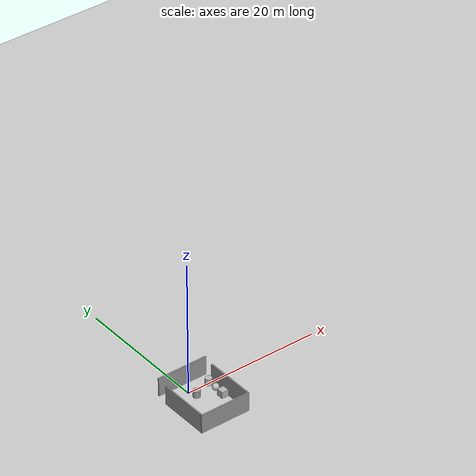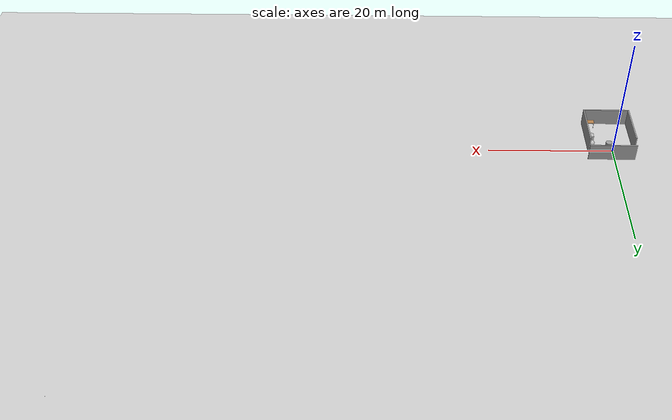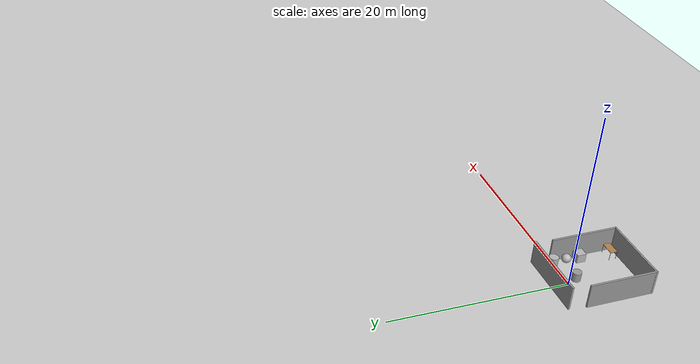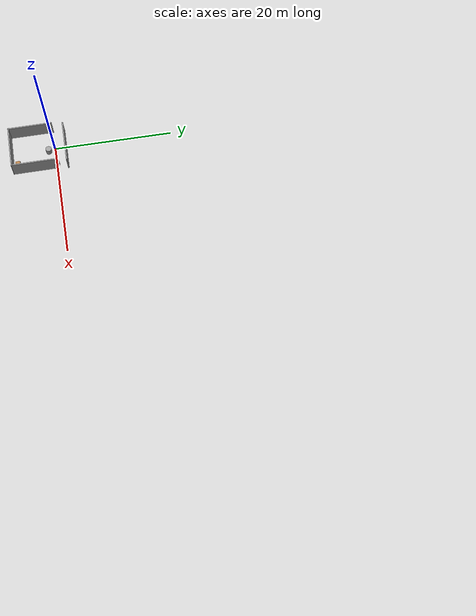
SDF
<sdf version="1.6">
 <world name="default">
  <light name="sun" type="directional">
   <pose>0 0 10 0 -0 0</pose>
   <diffuse>0.8 0.8 0.8 1</diffuse>
   <specular>0.2 0.2 0.2 1</specular>
   <attenuation>
    <range>1000</range>
    <constant>0.9</constant>
    <linear>0.01</linear>
    <quadratic>0.001</quadratic>
   </attenuation>
   <direction>-0.5 0.1 -0.9</direction>
  </light>
  <model name="ground_plane">
   <static>1</static>
   <link name="link">
    <collision name="collision">
     <geometry><plane><normal>0 0 1</normal><size>100 100</size></plane></geometry>
     <surface><friction><ode><mu>100</mu><mu2>50</mu2></ode></friction></surface>
    </collision>
    <visual name="visual">
     <cast_shadows>0</cast_shadows>
     <geometry><plane><normal>0 0 1</normal><size>100 100</size></plane></geometry>
     <material>
      <script><uri>file://media/materials/scripts/gazebo.material</uri><name>Gazebo/Grey</name></script>
     </material>
    </visual>
   </link>
  </model>
  <gravity>0 0 -9.8</gravity>
  <magnetic_field>6e-06 2.3e-05 -4.2e-05</magnetic_field>
  <atmosphere type="adiabatic"/>
  <physics name="default_physics" default="0" type="ode">
   <max_step_size>0.001</max_step_size>
   <real_time_factor>1</real_time_factor>
   <real_time_update_rate>1000</real_time_update_rate>
  </physics>
  <scene><ambient>0.4 0.4 0.4 1</ambient><background>0.7 0.7 0.7 1</background><shadows>1</shadows></scene>
  <spherical_coordinates>
   <surface_model>EARTH_WGS84</surface_model>
   <latitude_deg>0</latitude_deg>
   <longitude_deg>0</longitude_deg>
   <elevation>0</elevation>
   <heading_deg>0</heading_deg>
  </spherical_coordinates>
  <model name="grey_wall">
   <static>1</static>
   <link name="link">
    <pose>0 0 1.4 0 -0 0</pose>
    <collision name="collision"><geometry><box><size>7.5 0.2 2.8</size></box></geometry></collision>
    <visual name="visual">
     <cast_shadows>0</cast_shadows>
     <geometry><box><size>7.5 0.2 2.8</size></box></geometry>
     <material>
      <script>
       <uri>model://grey_wall/materials/scripts</uri>
       <uri>model://grey_wall/materials/textures</uri>
       <name>vrc/grey_wall</name>
      </script>
     </material>
    </visual>
   </link>
   <pose>0.213236 -7.35771 0 0 -0 0</pose>
  </model>
  <model name="grey_wall_1_clone">
   <static>1</static>
   <link name="link">
    <pose>0 0 1.4 0 -0 0</pose>
    <collision name="collision"><geometry><box><size>7.5 0.2 2.8</size></box></geometry></collision>
    <visual name="visual">
     <cast_shadows>0</cast_shadows>
     <geometry><box><size>7.5 0.2 2.8</size></box></geometry>
     <material>
      <script>
       <uri>model://grey_wall/materials/scripts</uri>
       <uri>model://grey_wall/materials/textures</uri>
       <name>vrc/grey_wall</name>
      </script>
     </material>
    </visual>
   </link>
   <pose>3.86033 -3.64104 0 0 0 -1.56625</pose>
  </model>
  <model name="grey_wall_0_clone">
   <static>1</static>
   <link name="link">
    <pose>0 0 1.4 0 -0 0</pose>
    <collision name="collision"><geometry><box><size>7.5 0.2 2.8</size></box></geometry></collision>
    <visual name="visual">
     <cast_shadows>0</cast_shadows>
     <geometry><box><size>7.5 0.2 2.8</size></box></geometry>
     <material>
      <script>
       <uri>model://grey_wall/materials/scripts</uri>
       <uri>model://grey_wall/materials/textures</uri>
       <name>vrc/grey_wall</name>
      </script>
     </material>
    </visual>
   </link>
   <pose>0.455183 1.90264 0 0 -0 0</pose>
  </model>
  <model name="grey_wall_1_clone_clone">
   <static>1</static>
   <link name="link">
    <pose>0 0 1.4 0 -0 0</pose>
    <collision name="collision"><geometry><box><size>7.5 0.2 2.8</size></box></geometry></collision>
    <visual name="visual">
     <cast_shadows>0</cast_shadows>
     <geometry><box><size>7.5 0.2 2.8</size></box></geometry>
     <material>
      <script>
       <uri>model://grey_wall/materials/scripts</uri>
       <uri>model://grey_wall/materials/textures</uri>
       <name>vrc/grey_wall</name>
      </script>
     </material>
    </visual>
   </link>
   <pose>-3.44556 -3.68812 0 0 0 -1.56625</pose>
  </model>
  <model name="metal_peg">
   <link name="link">
    <pose>0 0 0.031 0 -0 0</pose>
    <inertial>
     <mass>0.0121</mass>
     <inertia>
      <ixx>3.90898e-06</ixx>
      <ixy>0</ixy>
      <ixz>0</ixz>
      <iyy>3.90898e-06</iyy>
      <iyz>0</iyz>
      <izz>6.58845e-08</izz>
     </inertia>
    </inertial>
    <collision name="collision">
     <geometry><cylinder><radius>0.0033</radius><length>0.062</length></cylinder></geometry>
     <surface>
      <contact>
       <poissons_ratio>0.305</poissons_ratio>
       <elastic_modulus>2e+11</elastic_modulus>
       <ode><kp>100000</kp><kd>100</kd><max_vel>100</max_vel><min_depth>0.001</min_depth></ode>
      </contact>
      <friction>
       <torsional>
        <coefficient>1</coefficient>
        <use_patch_radius>0</use_patch_radius>
        <surface_radius>0.01</surface_radius>
       </torsional>
      </friction>
     </surface>
    </collision>
    <visual name="visual">
     <geometry><cylinder><radius>0.0033</radius><length>0.062</length></cylinder></geometry>
     <material>
      <script><uri>file://media/materials/scripts/gazebo.material</uri><name>Gazebo/Grey</name></script>
     </material>
    </visual>
   </link>
   <pose>78.2853 49.0052 -0.001 -5e-06 5e-06 -1e-06</pose>
  </model>
  <model name="table_0">
   <static>1</static>
   <link name="link">
    <collision name="surface">
     <pose>0 0 1 0 -0 0</pose>
     <geometry><box><size>1.5 0.8 0.03</size></box></geometry>
     <surface><friction><ode><mu>0.6</mu><mu2>0.6</mu2></ode></friction></surface>
    </collision>
    <visual name="visual1">
     <pose>0 0 1 0 -0 0</pose>
     <geometry><box><size>1.5 0.8 0.03</size></box></geometry>
     <material>
      <script><uri>file://media/materials/scripts/gazebo.material</uri><name>Gazebo/Wood</name></script>
     </material>
    </visual>
    <collision name="front_left_leg">
     <pose>0.68 0.38 0.5 0 -0 0</pose>
     <geometry><cylinder><radius>0.02</radius><length>1</length></cylinder></geometry>
    </collision>
    <visual name="front_left_leg">
     <pose>0.68 0.38 0.5 0 -0 0</pose>
     <geometry><cylinder><radius>0.02</radius><length>1</length></cylinder></geometry>
     <material>
      <script><uri>file://media/materials/scripts/gazebo.material</uri><name>Gazebo/Grey</name></script>
     </material>
    </visual>
    <collision name="front_right_leg">
     <pose>0.68 -0.38 0.5 0 -0 0</pose>
     <geometry><cylinder><radius>0.02</radius><length>1</length></cylinder></geometry>
    </collision>
    <visual name="front_right_leg">
     <pose>0.68 -0.38 0.5 0 -0 0</pose>
     <geometry><cylinder><radius>0.02</radius><length>1</length></cylinder></geometry>
     <material>
      <script><uri>file://media/materials/scripts/gazebo.material</uri><name>Gazebo/Grey</name></script>
     </material>
    </visual>
    <collision name="back_right_leg">
     <pose>-0.68 -0.38 0.5 0 -0 0</pose>
     <geometry><cylinder><radius>0.02</radius><length>1</length></cylinder></geometry>
    </collision>
    <visual name="back_right_leg">
     <pose>-0.68 -0.38 0.5 0 -0 0</pose>
     <geometry><cylinder><radius>0.02</radius><length>1</length></cylinder></geometry>
     <material>
      <script><uri>file://media/materials/scripts/gazebo.material</uri><name>Gazebo/Grey</name></script>
     </material>
    </visual>
    <collision name="back_left_leg">
     <pose>-0.68 0.38 0.5 0 -0 0</pose>
     <geometry><cylinder><radius>0.02</radius><length>1</length></cylinder></geometry>
    </collision>
    <visual name="back_left_leg">
     <pose>-0.68 0.38 0.5 0 -0 0</pose>
     <geometry><cylinder><radius>0.02</radius><length>1</length></cylinder></geometry>
     <material>
      <script><uri>file://media/materials/scripts/gazebo.material</uri><name>Gazebo/Grey</name></script>
     </material>
    </visual>
   </link>
   <pose>2.88346 -6.46194 0 0 -0 0</pose>
  </model>
  <model name="textured_shapes">
   <pose>3.19438 -1.52468 0.5 0 0 -0.008586</pose>
   <link name="box">
    <pose>0 -1.5 0 0 -0 0</pose>
    <collision name="collision"><geometry><box><size>1 1 1</size></box></geometry></collision>
    <visual name="visual">
     <geometry><box><size>1 1 1</size></box></geometry>
     <material>
      <script>
       <uri>model://textured_shapes/materials/scripts</uri>
       <uri>model://textured_shapes/materials/textures</uri>
       <name>TexturedShape/Squares</name>
      </script>
     </material>
    </visual>
    <inertial>
     <inertia><ixx>1</ixx><ixy>0</ixy><ixz>0</ixz><iyy>1</iyy><iyz>0</iyz><izz>1</izz></inertia>
     <mass>1</mass>
    </inertial>
   </link>
   <link name="sphere">
    <collision name="collision"><geometry><sphere><radius>0.5</radius></sphere></geometry></collision>
    <visual name="visual">
     <geometry><sphere><radius>0.5</radius></sphere></geometry>
     <material>
      <script>
       <uri>model://textured_shapes/materials/scripts</uri>
       <uri>model://textured_shapes/materials/textures</uri>
       <name>TexturedShape/Squares</name>
      </script>
     </material>
    </visual>
    <inertial>
     <inertia><ixx>1</ixx><ixy>0</ixy><ixz>0</ixz><iyy>1</iyy><iyz>0</iyz><izz>1</izz></inertia>
     <mass>1</mass>
    </inertial>
   </link>
   <link name="cylinder">
    <pose>0 1.5 0 0 -0 0</pose>
    <collision name="collision">
     <geometry><cylinder><radius>0.5</radius><length>1</length></cylinder></geometry>
    </collision>
    <visual name="visual">
     <geometry><cylinder><radius>0.5</radius><length>1</length></cylinder></geometry>
     <material>
      <script>
       <uri>model://textured_shapes/materials/scripts</uri>
       <uri>model://textured_shapes/materials/textures</uri>
       <name>TexturedShape/Squares</name>
      </script>
     </material>
    </visual>
    <inertial>
     <inertia><ixx>1</ixx><ixy>0</ixy><ixz>0</ixz><iyy>1</iyy><iyz>0</iyz><izz>1</izz></inertia>
     <mass>1</mass>
    </inertial>
   </link>
  </model>
  <model name="unit_cylinder">
   <pose>0.481746 -1.09698 0.499993 -3e-06 -1e-06 -0</pose>
   <link name="link">
    <inertial>
     <mass>1</mass>
     <inertia><ixx>0.145833</ixx><ixy>0</ixy><ixz>0</ixz><iyy>0.145833</iyy><iyz>0</iyz><izz>0.125</izz></inertia>
    </inertial>
    <collision name="collision">
     <geometry><cylinder><radius>0.5</radius><length>1</length></cylinder></geometry>
    </collision>
    <visual name="visual">
     <geometry><cylinder><radius>0.5</radius><length>1</length></cylinder></geometry>
     <material>
      <script><name>Gazebo/Grey</name><uri>file://media/materials/scripts/gazebo.material</uri></script>
     </material>
    </visual>
   </link>
  </model>
 </world>
</sdf>
